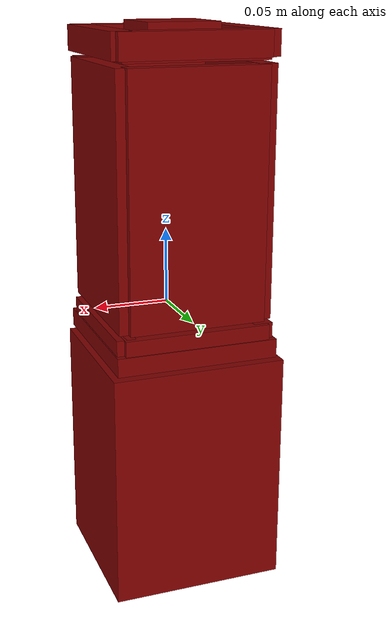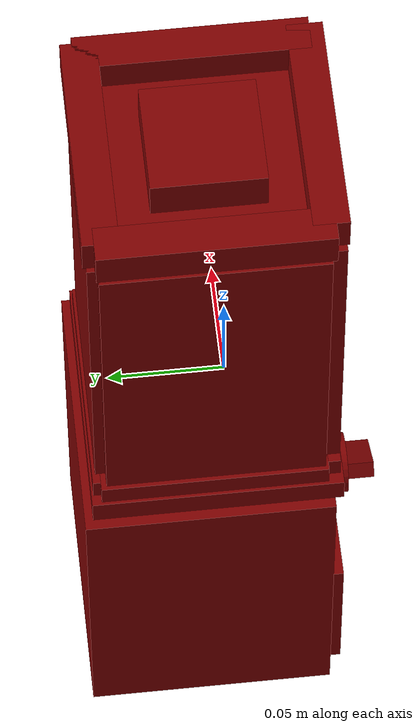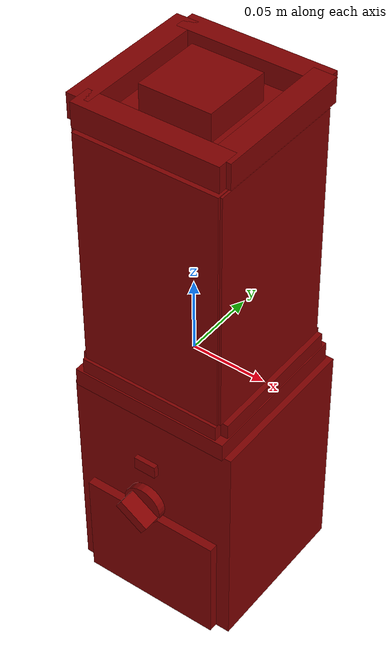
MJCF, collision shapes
<?xml version='1.0' encoding='UTF-8'?>
<mujoco model="model">
  <option timestep="0.002" gravity="0.0 0.0 -9.81"/>
  <compiler angle="radian"/>
  <asset>
    <mesh file="visuals/Blade001.obj" name="Blade001_vis"/>
    <mesh file="visuals/Body001.obj" name="Body001_vis"/>
    <mesh file="visuals/Button001.obj" name="Button001_vis"/>
    <mesh file="visuals/Jug001.obj" name="Jug001_vis"/>
    <mesh file="visuals/Jug001_Clear.obj" name="Jug001_Clear_vis"/>
    <mesh file="visuals/Knob001.obj" name="Knob001_vis"/>
    <mesh file="visuals/Lid001.obj" name="Lid001_vis"/>
    <texture file="visuals/T_BC001.png" name="Body001_material" type="2d"/>
    <material name="Body001_material" rgba="1 1 1 1.0" texture="Body001_material" shininess="0.1" specular="4"/>
    <texture file="visuals/T_BC001.png" name="Button001_material" type="2d"/>
    <material name="Button001_material" rgba="1 1 1 1.0" texture="Button001_material" shininess="0.1" specular="4"/>
    <texture file="visuals/T_BC001.png" name="Jug001_Clear_material" type="2d"/>
    <material name="Jug001_Clear_material" rgba="1 1 1 0.800000011920929" texture="Jug001_Clear_material" shininess="0.2512328028678894" specular="0.3103448502657381"/>
    <texture file="visuals/T_BC001.png" name="Blade001_material" type="2d"/>
    <material name="Blade001_material" rgba="1 1 1 1.0" texture="Blade001_material" shininess="0.1" specular="4"/>
    <texture file="visuals/T_BC001.png" name="Jug001_material" type="2d"/>
    <material name="Jug001_material" rgba="1 1 1 1.0" texture="Jug001_material" shininess="0.1" specular="4"/>
    <texture file="visuals/T_BC001.png" name="Lid001_material" type="2d"/>
    <material name="Lid001_material" rgba="1 1 1 1.0" texture="Lid001_material" shininess="0.1" specular="4"/>
    <texture file="visuals/T_BC001.png" name="Knob001_material" type="2d"/>
    <material name="Knob001_material" rgba="1 1 1 1.0" texture="Knob001_material" shininess="0.1" specular="4"/>
  </asset>
  <default>
    <default class="visual">
      <geom conaffinity="0" contype="0" group="1" type="mesh"/>
    </default>
    <default class="collision">
      <geom group="0" rgba="0.5 0 0 0.5"/>
    </default>
    <default class="spawn">
      <geom group="0" rgba="1 1 1 0.5" contype="0" conaffinity="0"/>
      <site group="0" rgba="1 1 1 0.5"/>
    </default>
    <default class="region">
      <geom group="1" conaffinity="0" contype="0" rgba="0 1 0 0"/>
    </default>
  </default>
  <worldbody>
    <body>
      <body name="object">
        <geom mesh="Body001_vis" type="mesh" solimp="0.998 0.998 0.001" solref="0.001 1" friction="0.95 0.3 0.1" class="visual" material="Body001_material"/>
        <geom class="collision" type="box" pos="-0.000083 0.011480 -0.105641" size="0.05748409032821655 0.05378222092986107 0.0782916247844696" quat="1.0 0.0 0.0 0.0" density="1000.0"/>
        <geom class="collision" type="box" pos="-0.000000 0.005243 -0.145372" size="0.04769057780504227 0.053517669439315796 0.0385608971118927" quat="1.0 0.0 0.0 0.0" density="1000.0"/>
        <body name="Button001">
          <joint axis="0.0 1.0 0.0" pos="-0.000000 -0.048437 -0.061565" limited="true" name="Button001_joint" range="0.0 0.001" type="slide" damping="1" frictionloss="1" armature=".01" stiffness="0.05"/>
          <geom mesh="Button001_vis" type="mesh" solimp="0.998 0.998 0.001" solref="0.001 1" friction="0.95 0.3 0.1" class="visual" material="Button001_material"/>
          <geom class="collision" type="box" pos="-0.000000 -0.048813 -0.061565" size="0.007550617679953575 0.0017081890255212784 0.004386723041534424" quat="1.0 0.0 0.0 0.0" density="1000.0"/>
        </body>
        <body name="Jug001_Clear">
          <geom class="region" name="reg_int" type="box" pos="-0.0002479999999999982 0.007743000000000002 0.0879235" size="0.037239 0.035992 0.09016149999999999"/>
          <joint axis="0.0 0.0 1.0" pos="0.000638 0.007066 0.065648" limited="true" name="Jug001_Clear_joint" range="0.0 0.05" type="slide" damping="1" frictionloss="1" armature=".01" stiffness="0.05"/>
          <geom mesh="Jug001_Clear_vis" type="mesh" solimp="0.998 0.998 0.001" solref="0.001 1" friction="0.95 0.3 0.1" class="visual" material="Jug001_Clear_material"/>
          <geom class="collision" type="box" pos="0.001313 -0.038490 0.079562" size="0.047682031989097595 0.0059927115216851234 0.08080093562602997" quat="1.0 0.0 0.0 0.0" density="1000.0"/>
          <geom class="collision" type="box" pos="0.044512 0.006108 0.079353" size="0.005983995273709297 0.04916241392493248 0.08059234917163849" quat="1.0 0.0 0.0 0.0" density="1000.0"/>
          <geom class="collision" type="box" pos="-0.000541 0.053576 0.079427" size="0.04497158154845238 0.00598710123449564 0.08066648989915848" quat="1.0 0.0 0.0 0.0" density="1000.0"/>
          <geom class="collision" type="box" pos="-0.045926 0.008657 0.079500" size="0.005990144331008196 0.04657210037112236 0.0807393342256546" quat="1.0 0.0 0.0 0.0" density="1000.0"/>
          <geom class="collision" type="box" pos="-0.001331 0.007587 -0.005763" size="0.03892234340310097 0.03759143874049187 0.0006653714226558805" quat="1.0 0.0 0.0 0.0" density="1000.0"/>
          <body name="Blade001">
            <joint axis="0.0 0.0 1.0" pos="-0.000013 0.008069 0.015731" limited="false" name="Blade001_joint" range="0 360" type="hinge" damping="1" frictionloss="1" armature=".01" stiffness="0.05"/>
            <geom mesh="Blade001_vis" type="mesh" solimp="0.998 0.998 0.001" solref="0.001 1" friction="0.95 0.3 0.1" class="visual" material="Blade001_material"/>
            <geom class="collision" type="box" pos="0.000755 0.008031 0.017751" size="0.007751177065074444 0.007751177065074444 0.000493193103466183" quat="1.0 0.0 0.0 0.0" density="1000.0"/>
            <geom class="collision" type="box" pos="-0.000064 0.022010 0.020754" size="0.004649334121495485 0.006977303884923458 0.0005624762270599604" quat="0.9774072766304016 0.21136470139026642 0.0 0.0" density="1000.0"/>
            <geom class="collision" type="box" pos="-0.000064 0.033620 0.026022" size="0.0023086860310286283 0.006977303884923458 0.0005624761688522995" quat="0.9774072766304016 0.21136470139026642 0.0 0.0" density="1000.0"/>
            <geom class="collision" type="box" pos="-0.014794 0.008161 0.012967" size="0.004649334121495485 0.009789085015654564 0.0005624762852676213" quat="0.6795143485069275 -0.19560261070728302 -0.19560261070728302 0.6795141696929932" density="1000.0"/>
            <geom class="collision" type="box" pos="-0.027974 0.008161 0.004694" size="0.0023086860310286283 0.006977303884923458 0.0005624761106446385" quat="0.6795143485069275 -0.19560259580612183 -0.1956026256084442 0.6795141696929932" density="1000.0"/>
            <geom class="collision" type="box" pos="-0.000036 -0.006498 0.020938" size="0.004649334121495485 0.006977303884923458 0.0005624762270599604" quat="7.37921936888597e-08 1.5957596133375773e-08 0.21136470139026642 0.9774072766304016" density="1000.0"/>
            <geom class="collision" type="box" pos="-0.000036 -0.018108 0.026206" size="0.0023086860310286283 0.006977303884923458 0.0005624761688522995" quat="7.37921936888597e-08 1.5957596133375773e-08 0.2113647162914276 0.9774072766304016" density="1000.0"/>
            <geom class="collision" type="box" pos="0.014694 0.008208 0.013151" size="0.004649334121495485 0.009789085015654564 0.0005624762852676213" quat="0.6795143485069275 -0.1956026405096054 0.19560255110263824 -0.6795141696929932" density="1000.0"/>
            <geom class="collision" type="box" pos="0.027874 0.008208 0.004878" size="0.0023086860310286283 0.006977303884923458 0.0005624761106446385" quat="0.6795143485069275 -0.19560261070728302 0.19560261070728302 -0.6795141696929932" density="1000.0"/>
            <geom class="collision" type="cylinder" pos="0.000068 0.007981 0.012379" size="0.006157022900879383 0.005274960771203041" quat="1.0 0.0 0.0 0.0" density="1000.0"/>
          </body>
          <body name="Jug001">
            <geom mesh="Jug001_vis" type="mesh" solimp="0.998 0.998 0.001" solref="0.001 1" friction="0.95 0.3 0.1" class="visual" material="Jug001_material"/>
            <geom class="collision" type="box" pos="-0.046095 0.009110 -0.009835" size="0.006394772324711084 0.04842328280210495 0.006411881186068058" quat="1.0 0.0 0.0 0.0" density="1000.0"/>
            <geom class="collision" type="box" pos="0.046536 0.009110 -0.009835" size="0.006394772324711084 0.04842328280210495 0.006411881186068058" quat="1.0 0.0 0.0 0.0" density="1000.0"/>
            <geom class="collision" type="box" pos="-0.000431 0.054442 -0.009835" size="0.04842328280210495 0.006394779775291681 0.006411881186068058" quat="1.0 0.0 0.0 0.0" density="1000.0"/>
            <geom class="collision" type="box" pos="-0.000431 -0.038277 -0.009835" size="0.04842328280210495 0.006394779775291681 0.006411881186068058" quat="1.0 0.0 0.0 0.0" density="1000.0"/>
            <geom class="collision" type="cylinder" pos="-0.000000 0.008268 -0.011212" size="0.020905563607811928 0.0034535357262939215" quat="1.0 0.0 0.0 0.0" density="1000.0"/>
            <geom class="collision" type="cylinder" pos="-0.000000 0.008268 -0.000104" size="0.009490281343460083 0.003182104090228677" quat="1.0 0.0 0.0 0.0" density="1000.0"/>
            <geom class="collision" type="box" pos="-0.000083 0.007928 -0.019765" size="0.053785525262355804 0.05378224700689316 0.006159114185720682" quat="1.0 0.0 0.0 0.0" density="1000.0"/>
          </body>
          <body name="Lid001">
            <joint axis="0.0 0.0 1.0" pos="0.002024 0.005626 0.176185" limited="true" name="Lid001_joint" range="0.0 0.05" type="slide" damping="1" frictionloss="1" armature=".01" stiffness="0.05"/>
            <geom mesh="Lid001_vis" type="mesh" solimp="0.998 0.998 0.001" solref="0.001 1" friction="0.95 0.3 0.1" class="visual" material="Lid001_material"/>
            <geom class="collision" type="box" pos="-0.000686 0.008479 0.173905" size="0.023568520322442055 0.023568520322442055 0.010026845149695873" quat="1.0 0.0 0.0 0.0" density="1000.0"/>
            <geom class="collision" type="box" pos="-0.000686 0.008479 0.164029" size="0.04685448855161667 0.04685448855161667 0.001828211359679699" quat="1.0 0.0 0.0 0.0" density="1000.0"/>
            <geom class="collision" type="box" pos="0.002118 0.053587 0.172092" size="0.04791790992021561 0.00750143313780427 0.008214022032916546" quat="1.0 0.0 0.0 0.0" density="1000.0"/>
            <geom class="collision" type="box" pos="0.002118 -0.037602 0.172092" size="0.04791790992021561 0.00750143313780427 0.008214022032916546" quat="1.0 0.0 0.0 0.0" density="1000.0"/>
            <geom class="collision" type="box" pos="0.045557 0.008346 0.172092" size="0.007501436863094568 0.04791790992021561 0.008214022032916546" quat="1.0 0.0 0.0 0.0" density="1000.0"/>
            <geom class="collision" type="box" pos="-0.045382 0.008346 0.172092" size="0.007501436863094568 0.04791790992021561 0.008214022032916546" quat="1.0 0.0 0.0 0.0" density="1000.0"/>
          </body>
        </body>
        <body name="Knob001">
          <joint axis="0.0 1.0 0.0" pos="0.000002 -0.053508 -0.091549" limited="true" name="Knob001_joint" range="0.0 4.852015320544236" type="hinge" damping="0.05" armature="0.001" springref="-0.01"/>
          <geom mesh="Knob001_vis" type="mesh" solimp="0.998 0.998 0.001" solref="0.001 1" friction="0.95 0.3 0.1" class="visual" material="Knob001_material"/>
          <geom class="collision" type="cylinder" pos="-0.000000 -0.051367 -0.091531" size="0.01323349867016077 0.002916333032771945" quat="0.7071067094802856 0.70710688829422 0.0 0.0" density="1000.0"/>
          <geom class="collision" type="box" pos="0.000747 -0.059135 -0.091538" size="0.0036572455428540707 0.00676334323361516 0.011232498101890087" quat="0.880424976348877 0.0 -0.4741854667663574 0.0" density="1000.0"/>
        </body>
        <geom class="region" name="reg_main" type="box" pos="0.0 0.008090999999999997 -5.5000000000055005e-06" size="0.05809 0.058068999999999996 0.1839515"/>
      </body>
    </body>
  </worldbody>
  <actuator>
    <motor name="Button001_joint_actuator" joint="Button001_joint" gear="0.5"/>
    <motor name="Jug001_Clear_joint_actuator" joint="Jug001_Clear_joint" gear="0.5"/>
    <motor name="Knob001_joint_actuator" joint="Knob001_joint" gear="0.5"/>
    <motor name="Blade001_joint_actuator" joint="Blade001_joint" gear="20"/>
    <motor name="Lid001_joint_actuator" joint="Lid001_joint" gear="0.5"/>
  </actuator>
</mujoco>
